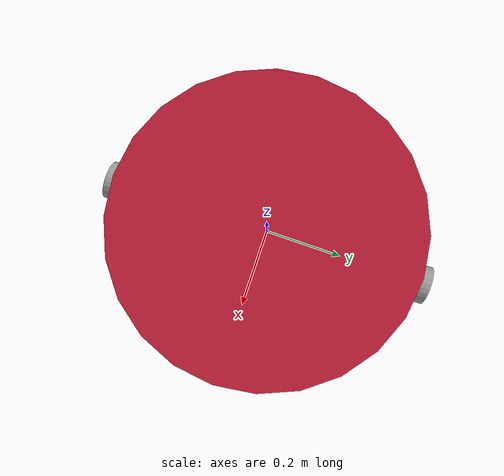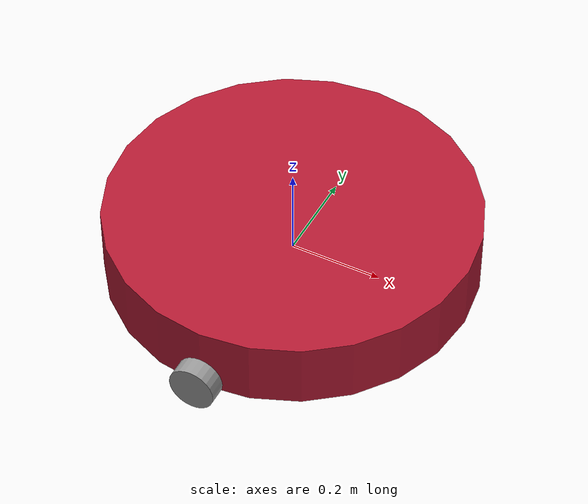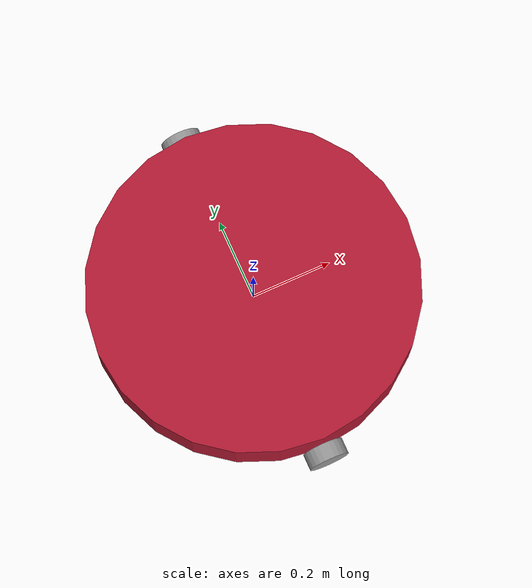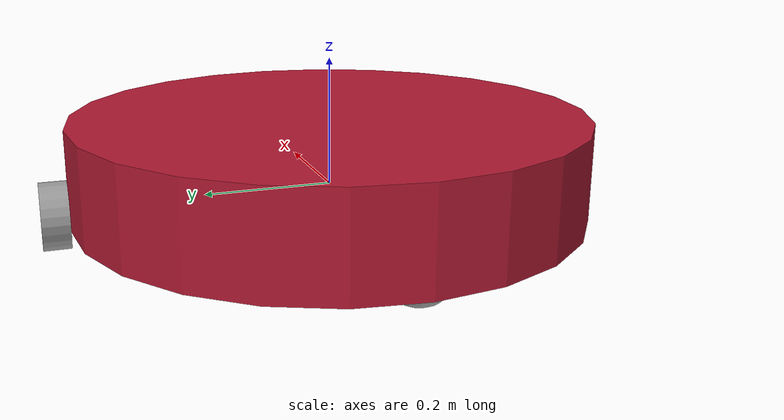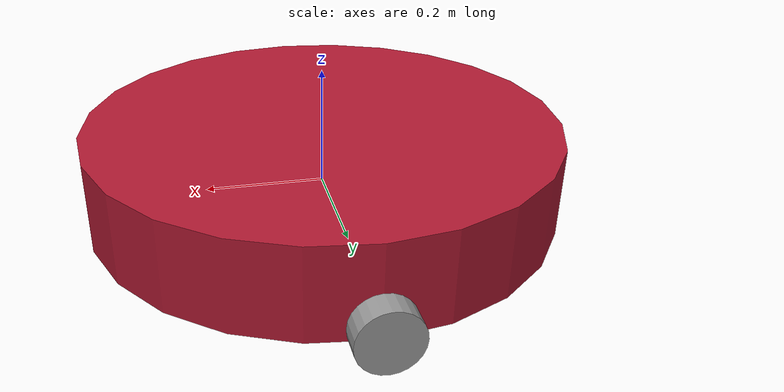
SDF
<?xml version='1.0'?>
<sdf version='1.6'>
  <model name='Roboter'>
    <link name='link_0'>
      <pose frame=''>4e-06 8.4e-05 0.04 0 -0 0</pose>
      <inertial>
        <mass>1</mass>
        <inertia>
          <ixx>0.145833</ixx>
          <ixy>0</ixy>
          <ixz>0</ixz>
          <iyy>0.145833</iyy>
          <iyz>0</iyz>
          <izz>0.125</izz>
        </inertia>
        <pose frame=''>0 0 0 0 -0 0</pose>
      </inertial>
      <self_collide>0</self_collide>
      <kinematic>0</kinematic>
      <gravity>1</gravity>
      <visual name='visual'>
        <pose frame=''>0 0 0 0 -0 0</pose>
        <geometry>
          <cylinder>
            <radius>0.4</radius>
            <length>0.15</length>
          </cylinder>
        </geometry>
        <material>
          <lighting>1</lighting>
          <script>
            <uri>file://media/materials/scripts/gazebo.material</uri>
            <name>Gazebo/Grey</name>
          </script>
          <shader type='pixel'>
            <normal_map>__default__</normal_map>
          </shader>
          <ambient>0.7 0.1 0.2 1</ambient>
          <diffuse>0.7 0.7 0.7 1</diffuse>
          <specular>0.01 0.01 0.01 1</specular>
          <emissive>0 0 0 1</emissive>
        </material>
        <transparency>0</transparency>
        <cast_shadows>1</cast_shadows>
      </visual>
      <collision name='collision'>
        <laser_retro>0</laser_retro>
        <max_contacts>10</max_contacts>
        <pose frame=''>0 0 0 0 -0 0</pose>
        <geometry>
          <cylinder>
            <radius>0.4</radius>
            <length>0.15</length>
          </cylinder>
        </geometry>
        <surface>
          <friction>
            <ode>
              <mu>1</mu>
              <mu2>1</mu2>
              <fdir1>0 0 0</fdir1>
              <slip1>0</slip1>
              <slip2>0</slip2>
            </ode>
            <torsional>
              <coefficient>1</coefficient>
              <patch_radius>0</patch_radius>
              <surface_radius>0</surface_radius>
              <use_patch_radius>1</use_patch_radius>
              <ode>
                <slip>0</slip>
              </ode>
            </torsional>
          </friction>
          <bounce>
            <restitution_coefficient>0</restitution_coefficient>
            <threshold>1e+06</threshold>
          </bounce>
          <contact>
            <collide_without_contact>0</collide_without_contact>
            <collide_without_contact_bitmask>1</collide_without_contact_bitmask>
            <collide_bitmask>1</collide_bitmask>
            <ode>
              <soft_cfm>0</soft_cfm>
              <soft_erp>0.2</soft_erp>
              <kp>1e+13</kp>
              <kd>1</kd>
              <max_vel>0.01</max_vel>
              <min_depth>0</min_depth>
            </ode>
            <bullet>
              <split_impulse>1</split_impulse>
              <split_impulse_penetration_threshold>-0.01</split_impulse_penetration_threshold>
              <soft_cfm>0</soft_cfm>
              <soft_erp>0.2</soft_erp>
              <kp>1e+13</kp>
              <kd>1</kd>
            </bullet>
          </contact>
        </surface>
      </collision>
    </link>
    <link name='link_1_clone'>
      <pose frame=''>0 0.420094 -0.01 1.5707 -0 0</pose>
      <inertial>
        <mass>1</mass>
        <inertia>
          <ixx>0.145833</ixx>
          <ixy>0</ixy>
          <ixz>0</ixz>
          <iyy>0.145833</iyy>
          <iyz>0</iyz>
          <izz>0.125</izz>
        </inertia>
        <pose frame=''>0 0 0 0 -0 0</pose>
      </inertial>
      <self_collide>0</self_collide>
      <kinematic>0</kinematic>
      <visual name='visual'>
        <pose frame=''>0 0 0 0 -0 0</pose>
        <geometry>
          <cylinder>
            <radius>0.05</radius>
            <length>0.04</length>
          </cylinder>
        </geometry>
        <material>
          <lighting>1</lighting>
          <script>
            <uri>file://media/materials/scripts/gazebo.material</uri>
            <name>Gazebo/Grey</name>
          </script>
          <shader type='pixel'>
            <normal_map>__default__</normal_map>
          </shader>
          <ambient>0.3 0.3 0.3 1</ambient>
          <diffuse>0.7 0.7 0.7 1</diffuse>
          <specular>0.01 0.01 0.01 1</specular>
          <emissive>0 0 0 1</emissive>
        </material>
        <transparency>0</transparency>
        <cast_shadows>1</cast_shadows>
      </visual>
      <collision name='collision'>
        <laser_retro>0</laser_retro>
        <max_contacts>10</max_contacts>
        <pose frame=''>0 0 0 0 -0 0</pose>
        <geometry>
          <cylinder>
            <radius>0.05</radius>
            <length>0.04</length>
          </cylinder>
        </geometry>
        <surface>
          <friction>
            <ode>
              <mu>1</mu>
              <mu2>1</mu2>
              <fdir1>0 0 0</fdir1>
              <slip1>0</slip1>
              <slip2>0</slip2>
            </ode>
            <torsional>
              <coefficient>1</coefficient>
              <patch_radius>0</patch_radius>
              <surface_radius>0</surface_radius>
              <use_patch_radius>1</use_patch_radius>
              <ode>
                <slip>0</slip>
              </ode>
            </torsional>
          </friction>
          <bounce>
            <restitution_coefficient>0</restitution_coefficient>
            <threshold>1e+06</threshold>
          </bounce>
          <contact>
            <collide_without_contact>0</collide_without_contact>
            <collide_without_contact_bitmask>1</collide_without_contact_bitmask>
            <collide_bitmask>1</collide_bitmask>
            <ode>
              <soft_cfm>0</soft_cfm>
              <soft_erp>0.2</soft_erp>
              <kp>1e+13</kp>
              <kd>1</kd>
              <max_vel>0.01</max_vel>
              <min_depth>0</min_depth>
            </ode>
            <bullet>
              <split_impulse>1</split_impulse>
              <split_impulse_penetration_threshold>-0.01</split_impulse_penetration_threshold>
              <soft_cfm>0</soft_cfm>
              <soft_erp>0.2</soft_erp>
              <kp>1e+13</kp>
              <kd>1</kd>
            </bullet>
          </contact>
        </surface>
      </collision>
    </link>
    <link name='link_1_clone_clone'>
      <pose frame=''>0 -0.419916 -0.01 1.5707 -0 0</pose>
      <inertial>
        <mass>1</mass>
        <inertia>
          <ixx>0.145833</ixx>
          <ixy>0</ixy>
          <ixz>0</ixz>
          <iyy>0.145833</iyy>
          <iyz>0</iyz>
          <izz>0.125</izz>
        </inertia>
        <pose frame=''>0 0 0 0 -0 0</pose>
      </inertial>
      <self_collide>0</self_collide>
      <kinematic>0</kinematic>
      <visual name='visual'>
        <pose frame=''>0 0 0 0 -0 0</pose>
        <geometry>
          <cylinder>
            <radius>0.05</radius>
            <length>0.04</length>
          </cylinder>
        </geometry>
        <material>
          <lighting>1</lighting>
          <script>
            <uri>file://media/materials/scripts/gazebo.material</uri>
            <name>Gazebo/Grey</name>
          </script>
          <shader type='pixel'>
            <normal_map>__default__</normal_map>
          </shader>
          <ambient>0.3 0.3 0.3 1</ambient>
          <diffuse>0.7 0.7 0.7 1</diffuse>
          <specular>0.01 0.01 0.01 1</specular>
          <emissive>0 0 0 1</emissive>
        </material>
        <transparency>0</transparency>
        <cast_shadows>1</cast_shadows>
      </visual>
      <collision name='collision'>
        <laser_retro>0</laser_retro>
        <max_contacts>10</max_contacts>
        <pose frame=''>0 0 0 0 -0 0</pose>
        <geometry>
          <cylinder>
            <radius>0.05</radius>
            <length>0.04</length>
          </cylinder>
        </geometry>
        <surface>
          <friction>
            <ode>
              <mu>1</mu>
              <mu2>1</mu2>
              <fdir1>0 0 0</fdir1>
              <slip1>0</slip1>
              <slip2>0</slip2>
            </ode>
            <torsional>
              <coefficient>1</coefficient>
              <patch_radius>0</patch_radius>
              <surface_radius>0</surface_radius>
              <use_patch_radius>1</use_patch_radius>
              <ode>
                <slip>0</slip>
              </ode>
            </torsional>
          </friction>
          <bounce>
            <restitution_coefficient>0</restitution_coefficient>
            <threshold>1e+06</threshold>
          </bounce>
          <contact>
            <collide_without_contact>0</collide_without_contact>
            <collide_without_contact_bitmask>1</collide_without_contact_bitmask>
            <collide_bitmask>1</collide_bitmask>
            <ode>
              <soft_cfm>0</soft_cfm>
              <soft_erp>0.2</soft_erp>
              <kp>1e+13</kp>
              <kd>1</kd>
              <max_vel>0.01</max_vel>
              <min_depth>0</min_depth>
            </ode>
            <bullet>
              <split_impulse>1</split_impulse>
              <split_impulse_penetration_threshold>-0.01</split_impulse_penetration_threshold>
              <soft_cfm>0</soft_cfm>
              <soft_erp>0.2</soft_erp>
              <kp>1e+13</kp>
              <kd>1</kd>
            </bullet>
          </contact>
        </surface>
      </collision>
    </link>
    <link name='link_2'>
      <pose frame=''>-0.349996 -0.000346 -0.01 0 -0 0</pose>
      <inertial>
        <mass>1</mass>
        <inertia>
          <ixx>0.1</ixx>
          <ixy>0</ixy>
          <ixz>0</ixz>
          <iyy>0.1</iyy>
          <iyz>0</iyz>
          <izz>0.1</izz>
        </inertia>
        <pose frame=''>0 0 0 0 -0 0</pose>
      </inertial>
      <self_collide>0</self_collide>
      <kinematic>0</kinematic>
      <visual name='visual'>
        <pose frame=''>0 0 0 0 -0 0</pose>
        <geometry>
          <sphere>
            <radius>0.05</radius>
          </sphere>
        </geometry>
        <material>
          <lighting>1</lighting>
          <script>
            <uri>file://media/materials/scripts/gazebo.material</uri>
            <name>Gazebo/Grey</name>
          </script>
          <shader type='pixel'>
            <normal_map>__default__</normal_map>
          </shader>
          <ambient>0.3 0.3 0.3 1</ambient>
          <diffuse>0.7 0.7 0.7 1</diffuse>
          <specular>0.01 0.01 0.01 1</specular>
          <emissive>0 0 0 1</emissive>
        </material>
        <transparency>0</transparency>
        <cast_shadows>1</cast_shadows>
      </visual>
      <collision name='collision'>
        <laser_retro>0</laser_retro>
        <max_contacts>10</max_contacts>
        <pose frame=''>0 0 0 0 -0 0</pose>
        <geometry>
          <sphere>
            <radius>0.05</radius>
          </sphere>
        </geometry>
        <surface>
          <friction>
            <ode>
              <mu>1</mu>
              <mu2>1</mu2>
              <fdir1>0 0 0</fdir1>
              <slip1>0</slip1>
              <slip2>0</slip2>
            </ode>
            <torsional>
              <coefficient>1</coefficient>
              <patch_radius>0</patch_radius>
              <surface_radius>0</surface_radius>
              <use_patch_radius>1</use_patch_radius>
              <ode>
                <slip>0</slip>
              </ode>
            </torsional>
          </friction>
          <bounce>
            <restitution_coefficient>0</restitution_coefficient>
            <threshold>1e+06</threshold>
          </bounce>
          <contact>
            <collide_without_contact>0</collide_without_contact>
            <collide_without_contact_bitmask>1</collide_without_contact_bitmask>
            <collide_bitmask>1</collide_bitmask>
            <ode>
              <soft_cfm>0</soft_cfm>
              <soft_erp>0.2</soft_erp>
              <kp>1e+13</kp>
              <kd>1</kd>
              <max_vel>0.01</max_vel>
              <min_depth>0</min_depth>
            </ode>
            <bullet>
              <split_impulse>1</split_impulse>
              <split_impulse_penetration_threshold>-0.01</split_impulse_penetration_threshold>
              <soft_cfm>0</soft_cfm>
              <soft_erp>0.2</soft_erp>
              <kp>1e+13</kp>
              <kd>1</kd>
            </bullet>
          </contact>
        </surface>
      </collision>
    </link>
    <link name='link_2_clone'>
      <pose frame=''>0.350004 8.4e-05 -0.01 0 -0 0</pose>
      <inertial>
        <mass>1</mass>
        <inertia>
          <ixx>0.1</ixx>
          <ixy>0</ixy>
          <ixz>0</ixz>
          <iyy>0.1</iyy>
          <iyz>0</iyz>
          <izz>0.1</izz>
        </inertia>
        <pose frame=''>0 0 0 0 -0 0</pose>
      </inertial>
      <self_collide>0</self_collide>
      <kinematic>0</kinematic>
      <visual name='visual'>
        <pose frame=''>0 0 0 0 -0 0</pose>
        <geometry>
          <sphere>
            <radius>0.05</radius>
          </sphere>
        </geometry>
        <material>
          <lighting>1</lighting>
          <script>
            <uri>file://media/materials/scripts/gazebo.material</uri>
            <name>Gazebo/Grey</name>
          </script>
          <shader type='pixel'>
            <normal_map>__default__</normal_map>
          </shader>
          <ambient>0.3 0.3 0.3 1</ambient>
          <diffuse>0.7 0.7 0.7 1</diffuse>
          <specular>0.01 0.01 0.01 1</specular>
          <emissive>0 0 0 1</emissive>
        </material>
        <transparency>0</transparency>
        <cast_shadows>1</cast_shadows>
      </visual>
      <collision name='collision'>
        <laser_retro>0</laser_retro>
        <max_contacts>10</max_contacts>
        <pose frame=''>0 0 0 0 -0 0</pose>
        <geometry>
          <sphere>
            <radius>0.05</radius>
          </sphere>
        </geometry>
        <surface>
          <friction>
            <ode>
              <mu>1</mu>
              <mu2>1</mu2>
              <fdir1>0 0 0</fdir1>
              <slip1>0</slip1>
              <slip2>0</slip2>
            </ode>
            <torsional>
              <coefficient>1</coefficient>
              <patch_radius>0</patch_radius>
              <surface_radius>0</surface_radius>
              <use_patch_radius>1</use_patch_radius>
              <ode>
                <slip>0</slip>
              </ode>
            </torsional>
          </friction>
          <bounce>
            <restitution_coefficient>0</restitution_coefficient>
            <threshold>1e+06</threshold>
          </bounce>
          <contact>
            <collide_without_contact>0</collide_without_contact>
            <collide_without_contact_bitmask>1</collide_without_contact_bitmask>
            <collide_bitmask>1</collide_bitmask>
            <ode>
              <soft_cfm>0</soft_cfm>
              <soft_erp>0.2</soft_erp>
              <kp>1e+13</kp>
              <kd>1</kd>
              <max_vel>0.01</max_vel>
              <min_depth>0</min_depth>
            </ode>
            <bullet>
              <split_impulse>1</split_impulse>
              <split_impulse_penetration_threshold>-0.01</split_impulse_penetration_threshold>
              <soft_cfm>0</soft_cfm>
              <soft_erp>0.2</soft_erp>
              <kp>1e+13</kp>
              <kd>1</kd>
            </bullet>
          </contact>
        </surface>
      </collision>
    </link>
    <joint name='link_0_JOINT_11' type='ball'>
      <parent>link_0</parent>
      <child>link_2</child>
      <pose frame=''>0 0 0 0 -0 0</pose>
      <physics>
        <ode>
          <limit>
            <cfm>0</cfm>
            <erp>0.2</erp>
          </limit>
          <suspension>
            <cfm>0</cfm>
            <erp>0.2</erp>
          </suspension>
        </ode>
      </physics>
    </joint>
    <joint name='link_0_JOINT_12' type='ball'>
      <parent>link_0</parent>
      <child>link_2_clone</child>
      <pose frame=''>0 0 0 0 -0 0</pose>
      <physics>
        <ode>
          <limit>
            <cfm>0</cfm>
            <erp>0.2</erp>
          </limit>
          <suspension>
            <cfm>0</cfm>
            <erp>0.2</erp>
          </suspension>
        </ode>
      </physics>
    </joint>
    <joint name='link_0_JOINT_7' type='revolute'>
      <parent>link_0</parent>
      <child>link_1_clone</child>
      <pose frame=''>0 0 0 0 -0 0</pose>
      <axis>
        <xyz>0 0 1</xyz>
        <use_parent_model_frame>0</use_parent_model_frame>
        <limit>
          <lower>-1.79769e+308</lower>
          <upper>1.79769e+308</upper>
          <effort>-1</effort>
          <velocity>-1</velocity>
        </limit>
        <dynamics>
          <spring_reference>0</spring_reference>
          <spring_stiffness>0</spring_stiffness>
          <damping>0</damping>
          <friction>0</friction>
        </dynamics>
      </axis>
      <physics>
        <ode>
          <limit>
            <cfm>0</cfm>
            <erp>0.2</erp>
          </limit>
          <suspension>
            <cfm>0</cfm>
            <erp>0.2</erp>
          </suspension>
        </ode>
      </physics>
    </joint>
    <joint name='link_0_JOINT_8' type='revolute'>
      <parent>link_0</parent>
      <child>link_1_clone_clone</child>
      <pose frame=''>0 0 0 0 -0 0</pose>
      <axis>
        <xyz>0 0 1</xyz>
        <use_parent_model_frame>0</use_parent_model_frame>
        <limit>
          <lower>-1.79769e+308</lower>
          <upper>1.79769e+308</upper>
          <effort>-1</effort>
          <velocity>-1</velocity>
        </limit>
        <dynamics>
          <spring_reference>0</spring_reference>
          <spring_stiffness>0</spring_stiffness>
          <damping>0</damping>
          <friction>0</friction>
        </dynamics>
      </axis>
      <physics>
        <ode>
          <limit>
            <cfm>0</cfm>
            <erp>0.2</erp>
          </limit>
          <suspension>
            <cfm>0</cfm>
            <erp>0.2</erp>
          </suspension>
        </ode>
      </physics>
    </joint>
    <static>0</static>
    <allow_auto_disable>1</allow_auto_disable>
  </model>
</sdf>
